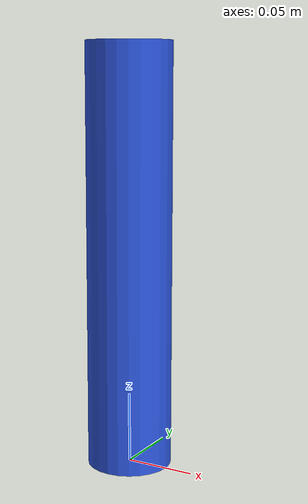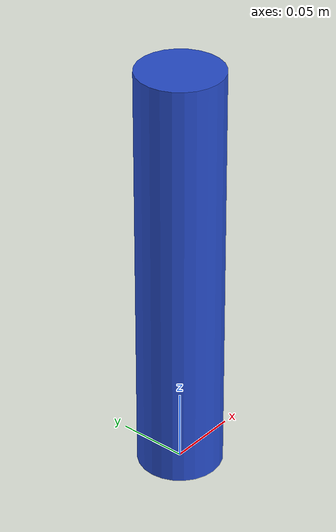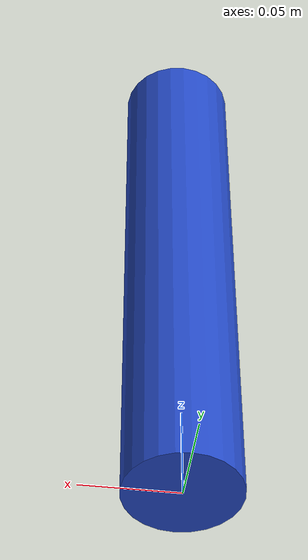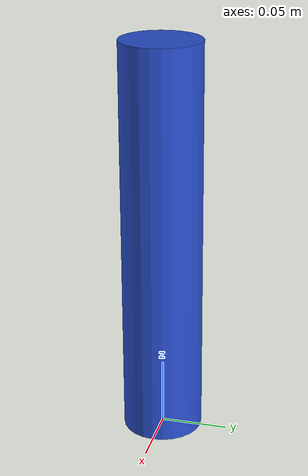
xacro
<?xml version="1.0"?>
<robot xmlns:xacro="http://www.ros.org/wiki/xacro" name="cylinder">

	<xacro:macro name="cylinder_inertia_def" params="radius length mass">
	<inertia ixx="${mass * (3 * radius * radius + length * length) / 12}"
			 iyy="${mass * (3 * radius * radius + length * length) / 12}"
			 izz="${mass * radius* radius / 2}"
			 ixy="0" iyz="0" ixz="0"/>
	</xacro:macro>

	<link name="object_link" type="fixed">
	    <material>Gazebo/Blue</material>
		<inertial>

				<mass value="4.0"/>
				<origin xyz="0 0 0.15" rpy="0 0 0"/>
				<xacro:cylinder_inertia_def radius="0.03" length="0.30" mass="4.0" />

		</inertial>
		<visual>
			<origin xyz="0 0 0.15" rpy="0 0 0"/>

			<geometry>

				<cylinder length="0.30" radius="0.03"/>
			</geometry>
		</visual>
		<collision>
			<origin xyz="0 0 0.15" rpy="0 0 0"/>

			<geometry>
				<cylinder length="0.30" radius="0.03"/>

			</geometry>
		</collision>
	</link>

	<gazebo reference="object_link">
	    <material>Gazebo/Blue</material>
		  <selfCollide>true</selfCollide>
		 <maxContacts>100</maxContacts>
	     <gravity>true</gravity>

	    <mu1>0.6</mu1>
	     <mu2>0.6</mu2>

	        <fdir1>1 0 0</fdir1>
         <maxVel>1.0</maxVel>

		<kp>1000000000000.0</kp>
	  <kd>100000.0</kd>
	  <minDepth>0.00</minDepth>
	 </gazebo>

</robot>
